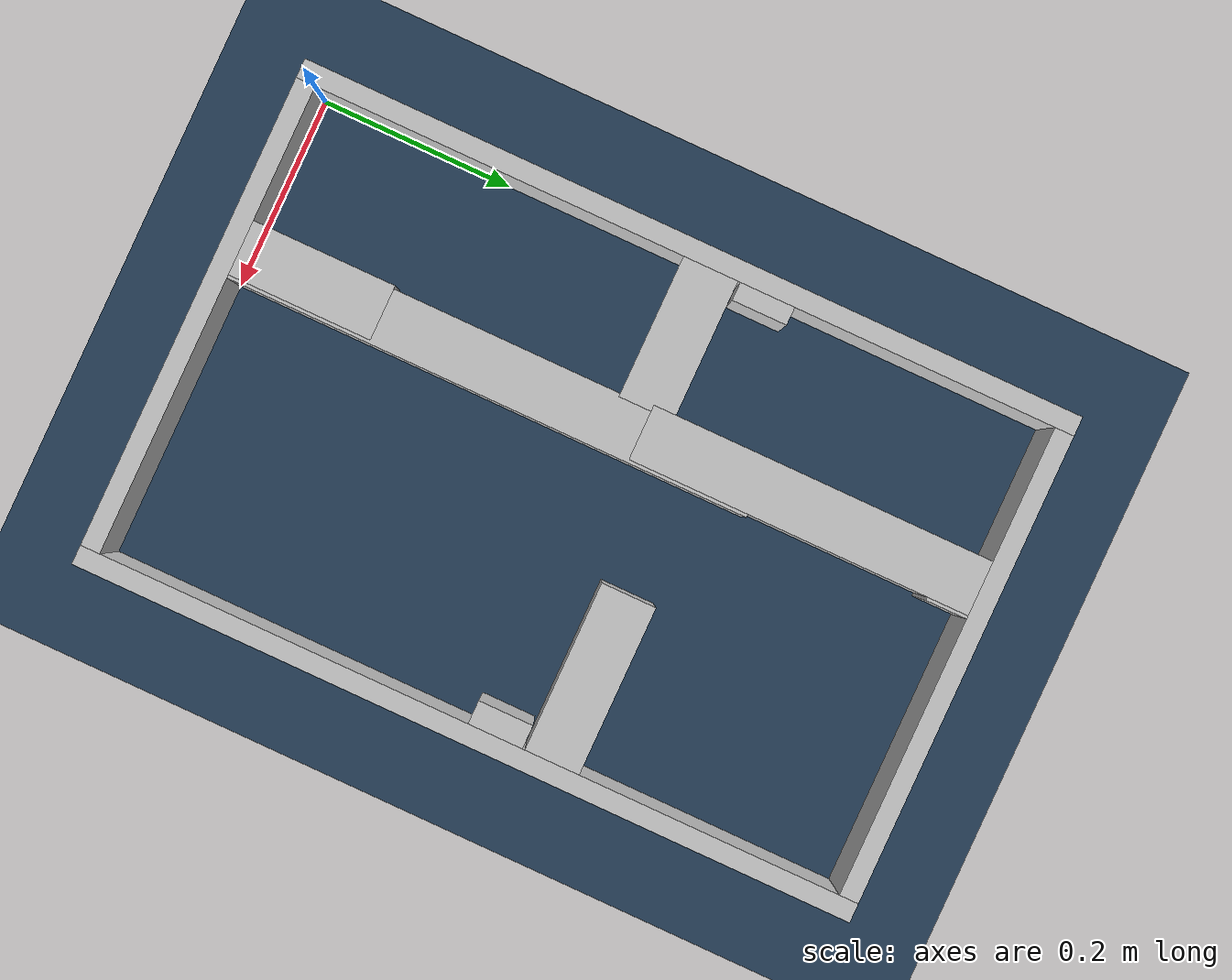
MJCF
<?xml version="1.0" ?>
<mujoco model="generated_real_template">
  <compiler angle="degree"/>
  <option timestep="0.002" integrator="implicitfast" iterations="100" cone="elliptic"/>
  <default>
    <geom density="1"/>
  </default>
  <asset>
    <texture builtin="gradient" height="3072" rgb1="0.3 0.5 0.7" rgb2="0 0 0" type="skybox" width="512"/>
    <texture builtin="checker" height="300" mark="edge" markrgb="0.8 0.8 0.8" name="groundplane" rgb1="0.2 0.3 0.4" rgb2="0.1 0.2 0.3" type="2d" width="300"/>
    <material name="groundplane" reflectance="0.2" texrepeat="5 5" texture="groundplane" texuniform="true"/>
  </asset>
  <worldbody>
    <light dir="0 0 -1" directional="true" pos="0 0 1.5"/>
    <geom name="floor" type="plane" condim="4" friction="0.5 0.005 0.001" material="groundplane" size="0 0 0.05"/>
    <body name="walls">
      <geom name="wall_boundary_left" type="box" condim="4" friction="1.0 0.005 0.0001" rgba="0.8 0.8 0.8 1" pos="-0.010000 0.387500 0.050000" euler="0 0 0.000000" size="0.010000 0.407500 0.050000"/>
      <geom name="wall_boundary_right" type="box" condim="4" friction="1.0 0.005 0.0001" rgba="0.8 0.8 0.8 1" pos="0.500000 0.387500 0.050000" euler="0 0 0.000000" size="0.010000 0.407500 0.050000"/>
      <geom name="wall_boundary_bottom" type="box" condim="4" friction="1.0 0.005 0.0001" rgba="0.8 0.8 0.8 1" pos="0.245000 -0.010000 0.050000" euler="0 0 0.000000" size="0.245000 0.010000 0.050000"/>
      <geom name="wall_boundary_top" type="box" condim="4" friction="1.0 0.005 0.0001" rgba="0.8 0.8 0.8 1" pos="0.245000 0.785000 0.050000" euler="0 0 0.000000" size="0.245000 0.010000 0.050000"/>
      <geom name="wall_inner_1_1" type="box" condim="4" friction="1.0 0.005 0.0001" rgba="0.8 0.8 0.8 1" pos="0.169023 0.074317 0.050000" euler="0 0 90.000000" size="0.074317 0.028500 0.050000"/>
      <geom name="wall_inner_1_2" type="box" condim="4" friction="1.0 0.005 0.0001" rgba="0.8 0.8 0.8 1" pos="0.169023 0.597307 0.050000" euler="0 0 90.000000" size="0.177693 0.028500 0.050000"/>
      <geom name="wall_inner_2_1" type="box" condim="4" friction="1.0 0.005 0.0001" rgba="0.8 0.8 0.8 1" pos="0.073582 0.414444 0.050000" euler="0 0 0.000000" size="0.073582 0.028500 0.050000"/>
      <geom name="wall_inner_2_2" type="box" condim="4" friction="1.0 0.005 0.0001" rgba="0.8 0.8 0.8 1" pos="0.477809 0.414444 0.050000" euler="0 0 0.000000" size="0.012191 0.028500 0.050000"/>
      <geom name="wall_inner_3_1" type="box" condim="4" friction="1.0 0.005 0.0001" rgba="0.8 0.8 0.8 1" pos="0.172391 0.272172 0.050000" euler="0 0 90.000000" size="0.272172 0.028500 0.050000"/>
      <geom name="wall_inner_3_2" type="box" condim="4" friction="1.0 0.005 0.0001" rgba="0.8 0.8 0.8 1" pos="0.172391 0.753681 0.050000" euler="0 0 90.000000" size="0.021319 0.028500 0.050000"/>
      <geom name="wall_inner_4_1" type="box" condim="4" friction="1.0 0.005 0.0001" rgba="0.8 0.8 0.8 1" pos="0.009371 0.473966 0.050000" euler="0 0 0.000000" size="0.009371 0.028500 0.050000"/>
      <geom name="wall_inner_4_2" type="box" condim="4" friction="1.0 0.005 0.0001" rgba="0.8 0.8 0.8 1" pos="0.402455 0.473966 0.050000" euler="0 0 0.000000" size="0.087545 0.028500 0.050000"/>
    </body>
  </worldbody>
</mujoco>
